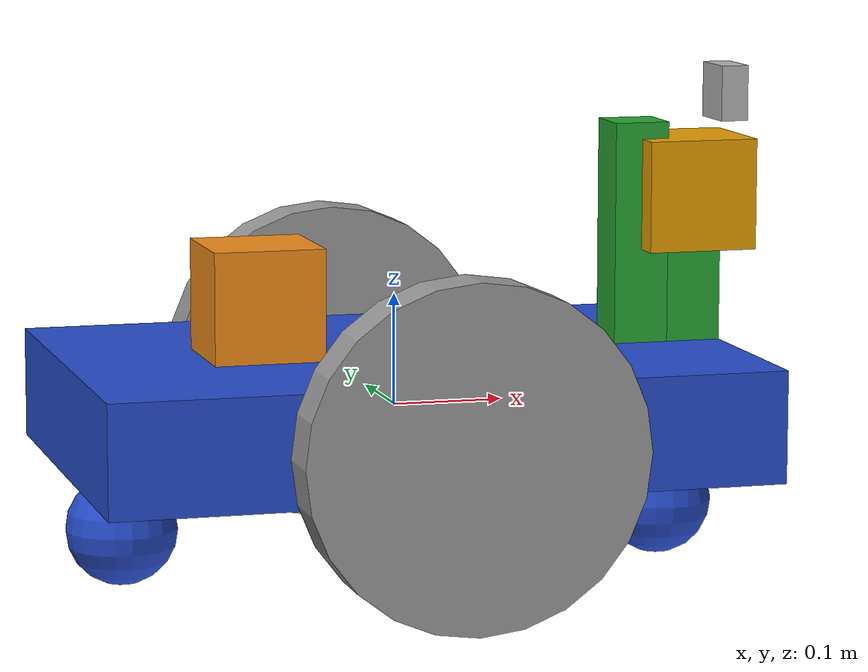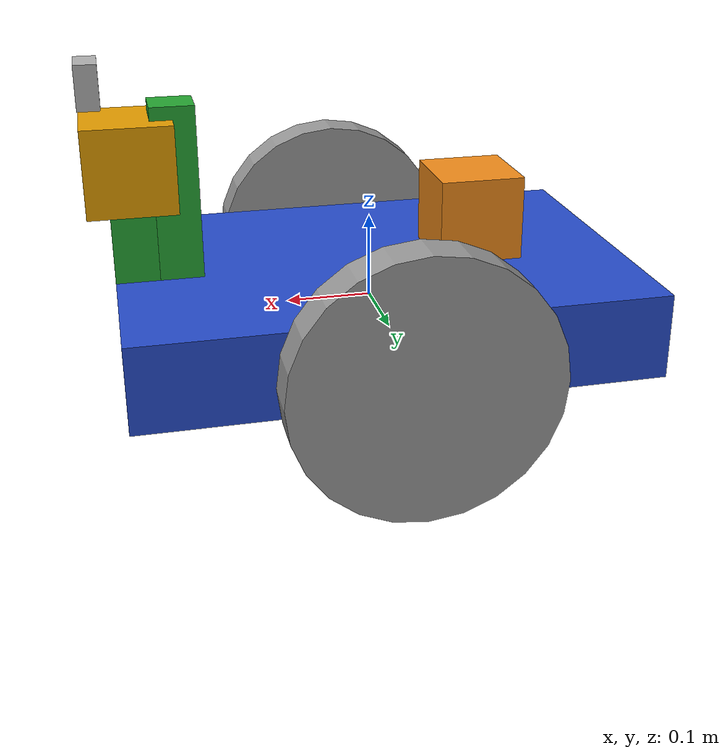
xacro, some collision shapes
<?xml version='1.0'?>

<robot name="rtab_dumpster" xmlns:xacro="http://www.ros.org/wiki/xacro">

<!-- Configure the Gazebo differential drive controller plugin -->
<xacro:arg name="odometryTopic" default="odom" />
<xacro:arg name="odometryFrame" default="odom" />
<xacro:arg name="robotBaseFrame" default="robot_footprint" />
<xacro:arg name="diff_drive_publishTf" default="true" />
<xacro:arg name="diff_drive_publishOdomTF" default="true" />

<xacro:include filename="$(find rtab_dumpster)/urdf/rtab_dumpster.gazebo" />

<link name="robot_footprint"></link>

<!-- Chassis & caster wheels -->

  <joint name="robot_footprint_joint" type="fixed">
    <origin xyz="0 0 0" rpy="0 0 0" />
    <parent link="robot_footprint"/>
    <child link="chassis" />
  </joint>

  <link name='chassis'>
    <pose>0 0 0.15 0 0 0</pose>

    <inertial>
      <mass value="15.0"/>
      <origin xyz="0.0 0 0" rpy=" 0 0 0"/>
      <inertia
          ixx="0.1" ixy="0" ixz="0"
          iyy="0.1" iyz="0"
          izz="0.1"
      />
    </inertial>

    <collision name='collision'>
      <origin xyz="0.0 0 0" rpy=" 0 0 0"/>
      <geometry>
        <box size=".6 .4 .1"/>
      </geometry>
    </collision>

    <visual name='chassis_visual'>
      <origin xyz="0.0 0 0" rpy=" 0 0 0"/>
      <geometry>
        <box size=".6 .4 .1"/>
      </geometry>
    </visual>

    <collision name='back_caster_collision'>
      <origin xyz="-0.25 0 -0.1" rpy=" 0 0 0"/>
      <geometry>
        <sphere radius="0.0499"/>
      </geometry>
    </collision>

    <visual name='back_caster_visual'>
      <origin xyz="-0.25 0 -0.1" rpy=" 0 0 0"/>
      <geometry>
        <sphere radius="0.05"/>
      </geometry>
    </visual>

    <collision name='front_caster_collision'>
      <origin xyz="0.25 0 -0.1" rpy=" 0 0 0"/>
      <geometry>
        <sphere radius="0.0499"/>
      </geometry>
    </collision>

    <visual name='front_caster_visual'>
      <origin xyz="0.25 0 -0.1" rpy=" 0 0 0"/>
      <geometry>
        <sphere radius="0.05"/>
      </geometry>
    </visual>

  </link>

<!-- Dump box -->

    <joint name="dump_box_joint" type="fixed">
    <origin xyz="-0.025 0.0 0.1" rpy="1.57079 0 1.57079" /> <!-- X:front,back, Y:left,right, Z:up,down-->
    <parent link="chassis"/>
    <child link="dump_box" />
  </joint>

  <link name='dump_box'>
    <pose>0 0 0 0 0 0</pose>

    <inertial>
      <mass value="0.0"/>
      <origin xyz="0 0 -0.1" rpy=" 0 0 0"/>
      <inertia
          ixx="0.1" ixy="0" ixz="0"
          iyy="0.1" iyz="0"
          izz="0.1"
      />
    </inertial>

    <collision name='collision'>
      <origin xyz="0 0 -0.1" rpy=" 0 0 0"/>
      <geometry>
        <box size=".1 .1 .1"/>
      </geometry>
    </collision>

    <visual name='dump_box_visual'>
      <origin xyz="-0.355 -0.05 0.1" rpy=" 0 0 0"/>
        <geometry>
        <mesh filename="package://rtab_dumpster/meshes/dumper_bin.dae" scale="0.006 0.006 0.006"/>
        </geometry>
    </visual>
 </link>

<!-- plastic bin -->

<!-- kinect pole -->

<joint type="fixed" name="kinect_pole_joint">
    <origin xyz="0.225 0.0 0.05" rpy="0 0 0"/>
    <child link="kinect_pole"/>
    <parent link="chassis"/>
  </joint>

  <link name='kinect_pole'>
    <pose>0 0 0 0 0 0</pose>

    <inertial>
      <mass value="0.2"/>
      <origin xyz="0.0 0 0" rpy=" 0 0 0"/>
      <inertia
          ixx="0.1" ixy="0" ixz="0"
          iyy="0.1" iyz="0"
          izz="0.1"
      />
    </inertial>

    <collision name='collision'>
      <origin xyz="0 0.0 0.1" rpy=" 0 0 0"/>
      <geometry>
        <box size="0.05 0.05 0.2"/>
      </geometry>
    </collision>

    <visual name='kinect_pole_visual'>
      <origin xyz="0 0.0 0.1" rpy=" 0 0 0"/>
        <geometry>
        <box size="0.05 0.05 0.2"/>
        </geometry>
    </visual>

  </link>

<!-- laser pole -->

<joint type="fixed" name="laser_pole_joint">
    <origin xyz="0.275 0.0 0.05" rpy="0 0 0"/>
    <child link="laser_pole"/>
    <parent link="chassis"/>
  </joint>

  <link name='laser_pole'>
    <pose>0 0 0 0 0 0</pose>

    <inertial>
      <mass value="0.2"/>
      <origin xyz="0.0 0 0" rpy=" 0 0 0"/>
      <inertia
          ixx="0.1" ixy="0" ixz="0"
          iyy="0.1" iyz="0"
          izz="0.1"
      />
    </inertial>

    <collision name='collision'>
      <origin xyz="0 0.0 0.05" rpy=" 0 0 0"/>
      <geometry>
        <box size="0.05 0.05 0.1"/>
      </geometry>
    </collision>

    <visual name='laser_pole_visual'>
      <origin xyz="0 0 0.05" rpy=" 0 0 0"/>
        <geometry>
        <box size="0.05 0.05 0.1"/>
        </geometry>
    </visual>

  </link>

<!-- Wheels -->

<joint type="continuous" name="left_wheel_hinge">
    <origin xyz="0 0.25 0" rpy="0 0 0"/>
    <child link="left_wheel"/>
    <parent link="chassis"/>
    <axis xyz="0 1 0" rpy="0 0 0"/>
    <limit effort="10000" velocity="1000"/>
    <dynamics damping="1.0" friction="1.0"/>
  </joint>

<link name='left_wheel'>
    <pose>0 0 0.15 0 0 0</pose>

    <inertial>
      <mass value="5.0"/>
      <origin xyz="0.0 0 0" rpy=" 0 1.5707 1.5707"/>
      <inertia
          ixx="0.1" ixy="0" ixz="0"
          iyy="0.1" iyz="0"
          izz="0.1"
      />
    </inertial>

    <collision name='left_wheel_collision'>
      <origin xyz="0.0 0 0" rpy=" 0 1.5707 1.5707"/>
      <geometry>
        <cylinder radius="0.15" length="0.05"/>
      </geometry>
    </collision>

    <visual name='left_wheel_visual'>
      <origin xyz="0.0 0 0" rpy=" 0 1.5707 1.5707"/>
      <geometry>
        <cylinder radius="0.15" length="0.05"/>
      </geometry>
    </visual>
  </link>

<joint type="continuous" name="right_wheel_hinge">
    <origin xyz="0 -0.25 0" rpy="0 0 0"/>
    <child link="right_wheel"/>
    <parent link="chassis"/>
    <axis xyz="0 1 0" rpy="0 0 0"/>
    <limit effort="10000" velocity="1000"/>
    <dynamics damping="1.0" friction="1.0"/>
  </joint>

<link name='right_wheel'>
    <pose>0 0 0.15 0 0 0</pose>

    <inertial>
      <mass value="5.0"/>
      <origin xyz="0.0 0 0" rpy=" 0 1.5707 1.5707"/>
      <inertia
          ixx="0.1" ixy="0" ixz="0"
          iyy="0.1" iyz="0"
          izz="0.1"
      />
    </inertial>

    <collision name='right_wheel_collision'>
      <origin xyz="0.0 0 0" rpy=" 0 1.5707 1.5707"/>
      <geometry>
        <cylinder radius="0.15" length="0.05"/>
      </geometry>
    </collision>

    <visual name='right_wheel_visual'>
      <origin xyz="0.0 0 0" rpy=" 0 1.5707 1.5707"/>
      <geometry>
        <cylinder radius="0.15" length="0.05"/>
      </geometry>
    </visual>
  </link>

<!-- Camera -->
<!-- link name must match the name of the reference in the .gazebo file -->

<link name="camera">
    <pose>0 0 0.1 0 0 0</pose>

    <inertial>
      <mass value="0.1"/>
      <origin xyz="0.0 0 0" rpy="0 0 0"/>
      <inertia
          ixx="0.0001" ixy="0" ixz="0"
          iyy="0.0001" iyz="0"
          izz="0.0001"
      />
    </inertial>

    <collision name='camera_collision'>
      <origin xyz="0.0 0 0" rpy="0 0 0"/>
      <geometry>
        <box size="0.05 0.05 0.05"/>
      </geometry>
    </collision>

    <visual name='camera_visual'>
      <origin xyz="0.0 0 0" rpy="0 0 0"/>
      <geometry>
         <box size="0.025 0.05 0.05"/>
      </geometry>
    </visual>
  </link>

<joint type="fixed" name="camera_joint">
    <origin xyz="0.0375 0 0.224" rpy="0 0 0"/>
    <child link="camera"/>
    <parent link="laser_pole"/>
  </joint>

<!-- Kinect Sensor -->

<!-- Laser -->
<link name="hokuyo">
    <pose>0 0 0 0 0 0</pose>

    <inertial>
      <mass value="0.1"/>
      <origin xyz="0.0 0 0" rpy="0 0 0"/>
      <inertia
          ixx="0.0001" ixy="0" ixz="0"
          iyy="0.0001" iyz="0"
          izz="0.0001"
      />
    </inertial>

    <collision name='hokuyo_collision'>
      <origin xyz="0.0 0 0" rpy="0 0 0"/>
      <geometry>
        <box size="0.1 0.1 0.1"/>
      </geometry>
    </collision>

    <visual name='hokuyo_visual'>
      <origin xyz="0.0 0 0" rpy="0 0 0"/>
      <geometry>
         <mesh filename="package://rtab_dumpster/meshes/hokuyo.dae"/>
      </geometry>
    </visual>
  </link>

<joint type="fixed" name="hokuyo_joint">
    <origin xyz="0.0 0 0.135" rpy="0 0 0"/> <!-- set height relative to laser_pole -->
    <child link="hokuyo"/>
    <parent link="laser_pole"/>
  </joint>

</robot>
